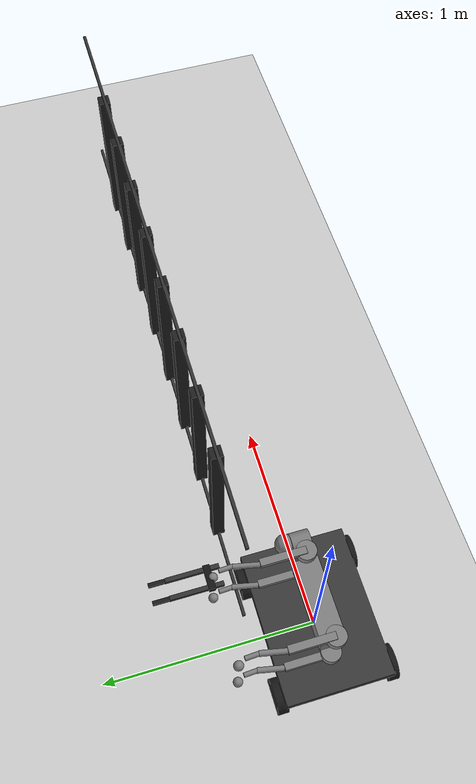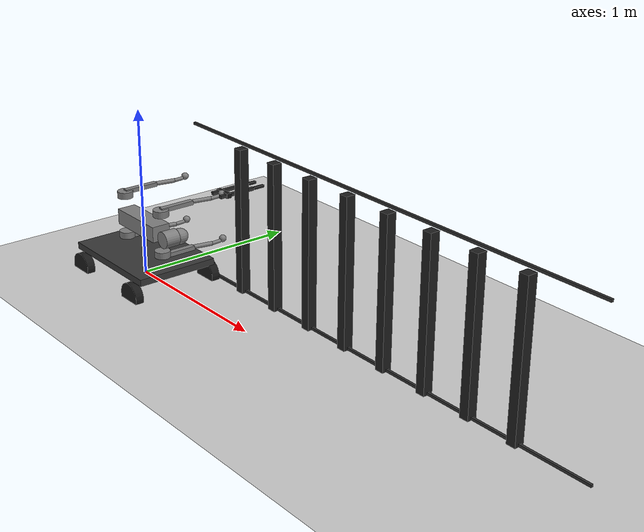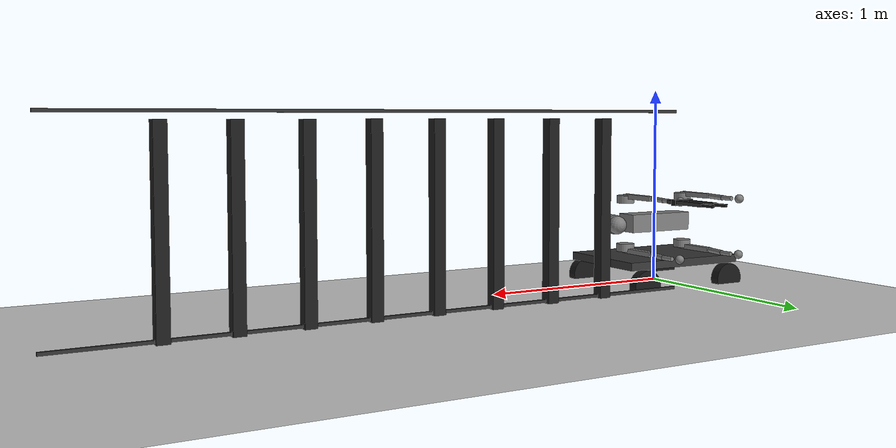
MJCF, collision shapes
<mujoco model="go2_real_ladder_crawl">
  <compiler angle="radian" meshdir="/home/student22/mujoco_menagerie/unitree_go2/assets" autolimits="true"/>
  <option timestep="0.002" gravity="0 0 -0.001"
          solver="Newton" iterations="100" tolerance="1e-10" impratio="10"/>
  <default>
    <default class="go2">
      <geom friction="0.6" margin="0.001" condim="1" />
      <joint axis="0 1 0" damping="2" armature="0.01" frictionloss="0.2" />
      <motor ctrlrange="-23.7 23.7" />
      <default class="abduction">
        <joint axis="1 0 0" range="-1.0472 1.0472" />
      </default>
      <default class="hip">
        <default class="front_hip">
          <joint range="-1.5708 3.4907" />
        </default>
        <default class="back_hip">
          <joint range="-0.5236 4.5379" />
        </default>
      </default>
      <default class="knee">
        <joint range="-2.7227 -0.83776" />
        <motor ctrlrange="-45.43 45.43" />
      </default>
      <default class="visual">
        <geom type="mesh" contype="0" conaffinity="0" group="2" />
      </default>
      <default class="collision">
        <geom group="3" />
        <default class="foot">
          <geom size="0.022" pos="-0.002 0 -0.213" priority="1" solimp="0.015 1 0.022" condim="6" friction="0.8 0.02 0.01" />
        </default>
      </default>
    </default>
  </default>

  <asset>
    <material name="metal" rgba=".9 .95 .95 1" />
    <material name="black" rgba="0 0 0 1" />
    <material name="white" rgba="1 1 1 1" />
    <material name="gray" rgba="0.671705 0.692426 0.774270 1" />

    <mesh file="base_0.obj" />
    <mesh file="base_1.obj" />
    <mesh file="base_2.obj" />
    <mesh file="base_3.obj" />
    <mesh file="base_4.obj" />
    <mesh file="hip_0.obj" />
    <mesh file="hip_1.obj" />
    <mesh file="thigh_0.obj" />
    <mesh file="thigh_1.obj" />
    <mesh file="thigh_mirror_0.obj" />
    <mesh file="thigh_mirror_1.obj" />
    <mesh file="calf_0.obj" />
    <mesh file="calf_1.obj" />
    <mesh file="calf_mirror_0.obj" />
    <mesh file="calf_mirror_1.obj" />
    <mesh file="foot.obj" />
  </asset>

  <worldbody>
    <light pos="0 0 4" dir="0 0 -1" diffuse="0.9 0.9 0.9"/>
    <geom name="floor" type="plane" size="10 10 0.1"
          rgba="0.80 0.80 0.80 1" friction="0.005 0.001 0.001"/>

    <body name="ladder" pos="1.619 0.3 0">
      <geom type="box" size="1.5 0.007 0.007" pos="0 0 0.007"
            rgba="0.20 0.20 0.20 1" contype="0" conaffinity="0"/>
      <geom type="box" size="1.5 0.007 0.007" pos="0 0 0.893"
            rgba="0.20 0.20 0.20 1" contype="0" conaffinity="0"/>
      <geom name="rung_01" type="box" size="0.028 0.028 0.440" pos="-1.05 0 0.42" rgba="0.12 0.12 0.12 1" contype="0" conaffinity="0"/>
      <geom name="rung_02" type="box" size="0.028 0.028 0.440" pos="-0.75 0 0.42" rgba="0.12 0.12 0.12 1" contype="0" conaffinity="0"/>
      <geom name="rung_03" type="box" size="0.028 0.028 0.440" pos="-0.45 0 0.42" rgba="0.12 0.12 0.12 1" contype="0" conaffinity="0"/>
      <geom name="rung_04" type="box" size="0.028 0.028 0.440" pos="-0.15 0 0.42" rgba="0.12 0.12 0.12 1" contype="0" conaffinity="0"/>
      <geom name="rung_05" type="box" size="0.028 0.028 0.440" pos=" 0.15 0 0.42" rgba="0.12 0.12 0.12 1" contype="0" conaffinity="0"/>
      <geom name="rung_06" type="box" size="0.028 0.028 0.440" pos=" 0.45 0 0.42" rgba="0.12 0.12 0.12 1" contype="0" conaffinity="0"/>
      <geom name="rung_07" type="box" size="0.028 0.028 0.440" pos=" 0.75 0 0.42" rgba="0.12 0.12 0.12 1" contype="0" conaffinity="0"/>
      <geom name="rung_08" type="box" size="0.028 0.028 0.440" pos=" 1.05 0 0.42" rgba="0.12 0.12 0.12 1" contype="0" conaffinity="0"/>
    </body>

    <body name="trolley" pos="0 0 0.12">
      <joint name="trolley_slide" type="slide" axis="1 0 0" damping="0.5" limited="false"/>
      <geom type="box" size="0.35 0.25 0.02" rgba="0.22 0.22 0.22 1" mass="5.0"/>
      <body name="wfl" pos=" 0.27  0.26 -0.10"><joint name="wfl_j" type="hinge" axis="0 1 0" damping="0.001" limited="false"/><geom type="cylinder" size="0.08 0.025" euler="1.5708 0 0" mass="0.5" rgba="0.10 0.10 0.10 1" friction="0.001 0.001 0.001"/></body>
      <body name="wfr" pos=" 0.27 -0.26 -0.10"><joint name="wfr_j" type="hinge" axis="0 1 0" damping="0.001" limited="false"/><geom type="cylinder" size="0.08 0.025" euler="1.5708 0 0" mass="0.5" rgba="0.10 0.10 0.10 1" friction="0.001 0.001 0.001"/></body>
      <body name="wrl" pos="-0.27  0.26 -0.10"><joint name="wrl_j" type="hinge" axis="0 1 0" damping="0.001" limited="false"/><geom type="cylinder" size="0.08 0.025" euler="1.5708 0 0" mass="0.5" rgba="0.10 0.10 0.10 1" friction="0.001 0.001 0.001"/></body>
      <body name="wrr" pos="-0.27 -0.26 -0.10"><joint name="wrr_j" type="hinge" axis="0 1 0" damping="0.001" limited="false"/><geom type="cylinder" size="0.08 0.025" euler="1.5708 0 0" mass="0.5" rgba="0.10 0.10 0.10 1" friction="0.001 0.001 0.001"/></body>
      <body name="base" pos="0 0 0.19" childclass="go2" euler="1.5708 0 0">
      <inertial pos="0.021112 0 -0.005366" quat="-0.000543471 0.713435 -0.00173769 0.700719" mass="6.921" diaginertia="0.107027 0.0980771 0.0244531" />
      <geom mesh="base_0" material="black" class="visual" />
      <geom mesh="base_1" material="black" class="visual" />
      <geom mesh="base_2" material="black" class="visual" />
      <geom mesh="base_3" material="white" class="visual" />
      <geom mesh="base_4" material="gray" class="visual" />
      <geom size="0.1881 0.04675 0.057" type="box" class="collision" />
      <geom size="0.05 0.045" pos="0.285 0 0.01" type="cylinder" class="collision" />
      <geom size="0.047" pos="0.293 0 -0.06" class="collision" />
      <site name="imu" pos="-0.02557 0 0.04232" />
      <body name="FL_hip" pos="0.1934 0.0465 0">
        <inertial pos="-0.0054 0.00194 -0.000105" quat="0.497014 0.499245 0.505462 0.498237" mass="0.678" diaginertia="0.00088403 0.000596003 0.000479967" />
        <joint name="FL_hip_joint" class="abduction" />
        <geom mesh="hip_0" material="metal" class="visual" />
        <geom mesh="hip_1" material="gray" class="visual" />
        <geom size="0.046 0.02" pos="0 0.08 0" quat="1 1 0 0" type="cylinder" class="collision" />
        <body name="FL_thigh" pos="0 0.0955 0">
          <inertial pos="-0.00374 -0.0223 -0.0327" quat="0.829533 0.0847635 -0.0200632 0.551623" mass="1.152" diaginertia="0.00594973 0.00584149 0.000878787" />
          <joint name="FL_thigh_joint" class="front_hip" />
          <geom mesh="thigh_0" material="metal" class="visual" />
          <geom mesh="thigh_1" material="gray" class="visual" />
          <geom size="0.1065 0.01225 0.017" pos="0 0 -0.1065" quat="0.707107 0 0.707107 0" type="box" class="collision" />
          <body name="FL_calf" pos="0 0 -0.213">
            <inertial pos="0.00629595 -0.000622121 -0.141417" quat="0.710672 0.00154099 -0.00450087 0.703508" mass="0.241352" diaginertia="0.0014901 0.00146356 5.31397e-05" />
            <joint name="FL_calf_joint" class="knee" />
            <geom mesh="calf_0" material="gray" class="visual" />
            <geom mesh="calf_1" material="black" class="visual" />
            <geom size="0.012 0.06" pos="0.008 0 -0.06" quat="0.994493 0 -0.104807 0" type="cylinder" class="collision" />
            <geom size="0.011 0.0325" pos="0.02 0 -0.148" quat="0.999688 0 0.0249974 0" type="cylinder" class="collision" />
            <geom pos="0 0 -0.213" mesh="foot" class="visual" material="black" />
            <geom name="FL" class="foot" />
          <body name="gc_palm" pos="0 0 -0.213"><site name="gc_grip_site" pos="0 0 0" size="0.006" rgba="1 0 0 1" /><geom type="box" size="0.055 0.015 0.015" pos="0 0 -0.015" rgba="0.08 0.08 0.08 1" mass="0.001" contype="0" conaffinity="0" /><body name="gc_lp" pos="-0.040 0 -0.02"><joint name="gc_lp_joint" type="hinge" axis="0 1 0" range="0 1.2217" damping="2.0" armature="0.001" /><geom type="box" size="0.010 0.009 0.120" pos="0 0 -0.060" rgba="0.2 0.2 0.2 1" mass="0.001" contype="0" conaffinity="0" /><body name="gc_ld" pos="0 0 -0.120"><geom type="box" size="0.009 0.007 0.090" pos="0 0 -0.045" rgba="0.1 0.1 0.1 1" mass="0.001" contype="0" conaffinity="0" /></body></body><body name="gc_rp" pos="0.040 0 -0.02"><joint name="gc_rp_joint" type="hinge" axis="0 -1 0" range="0 1.2217" damping="2.0" armature="0.001" /><geom type="box" size="0.010 0.009 0.120" pos="0 0 -0.060" rgba="0.2 0.2 0.2 1" mass="0.001" contype="0" conaffinity="0" /><body name="gc_rd" pos="0 0 -0.120"><geom type="box" size="0.009 0.007 0.090" pos="0 0 -0.045" rgba="0.1 0.1 0.1 1" mass="0.001" contype="0" conaffinity="0" /></body></body></body></body>
        </body>
      </body>
      <body name="FR_hip" pos="0.1934 -0.0465 0">
        <inertial pos="-0.0054 -0.00194 -0.000105" quat="0.498237 0.505462 0.499245 0.497014" mass="0.678" diaginertia="0.00088403 0.000596003 0.000479967" />
        <joint name="FR_hip_joint" class="abduction" />
        <geom mesh="hip_0" material="metal" class="visual" quat="4.63268e-05 1 0 0" />
        <geom mesh="hip_1" material="gray" class="visual" quat="4.63268e-05 1 0 0" />
        <geom size="0.046 0.02" pos="0 -0.08 0" quat="0.707107 0.707107 0 0" type="cylinder" class="collision" />
        <body name="FR_thigh" pos="0 -0.0955 0">
          <inertial pos="-0.00374 0.0223 -0.0327" quat="0.551623 -0.0200632 0.0847635 0.829533" mass="1.152" diaginertia="0.00594973 0.00584149 0.000878787" />
          <joint name="FR_thigh_joint" class="front_hip" />
          <geom mesh="thigh_mirror_0" material="metal" class="visual" />
          <geom mesh="thigh_mirror_1" material="gray" class="visual" />
          <geom size="0.1065 0.01225 0.017" pos="0 0 -0.1065" quat="0.707107 0 0.707107 0" type="box" class="collision" />
          <body name="FR_calf" pos="0 0 -0.213">
            <inertial pos="0.00629595 0.000622121 -0.141417" quat="0.703508 -0.00450087 0.00154099 0.710672" mass="0.241352" diaginertia="0.0014901 0.00146356 5.31397e-05" />
            <joint name="FR_calf_joint" class="knee" />
            <geom mesh="calf_mirror_0" material="gray" class="visual" />
            <geom mesh="calf_mirror_1" material="black" class="visual" />
            <geom size="0.013 0.06" pos="0.01 0 -0.06" quat="0.995004 0 -0.0998334 0" type="cylinder" class="collision" />
            <geom size="0.011 0.0325" pos="0.02 0 -0.148" quat="0.999688 0 0.0249974 0" type="cylinder" class="collision" />
            <geom pos="0 0 -0.213" mesh="foot" class="visual" material="black" />
            <geom name="FR" class="foot" />
          </body>
        </body>
      </body>
      <body name="RL_hip" pos="-0.1934 0.0465 0">
        <inertial pos="0.0054 0.00194 -0.000105" quat="0.505462 0.498237 0.497014 0.499245" mass="0.678" diaginertia="0.00088403 0.000596003 0.000479967" />
        <joint name="RL_hip_joint" class="abduction" />
        <geom mesh="hip_0" material="metal" class="visual" quat="4.63268e-05 0 1 0" />
        <geom mesh="hip_1" material="gray" class="visual" quat="4.63268e-05 0 1 0" />
        <geom size="0.046 0.02" pos="0 0.08 0" quat="0.707107 0.707107 0 0" type="cylinder" class="collision" />
        <body name="RL_thigh" pos="0 0.0955 0">
          <inertial pos="-0.00374 -0.0223 -0.0327" quat="0.829533 0.0847635 -0.0200632 0.551623" mass="1.152" diaginertia="0.00594973 0.00584149 0.000878787" />
          <joint name="RL_thigh_joint" class="back_hip" />
          <geom mesh="thigh_0" material="metal" class="visual" />
          <geom mesh="thigh_1" material="gray" class="visual" />
          <geom size="0.1065 0.01225 0.017" pos="0 0 -0.1065" quat="0.707107 0 0.707107 0" type="box" class="collision" />
          <body name="RL_calf" pos="0 0 -0.213">
            <inertial pos="0.00629595 -0.000622121 -0.141417" quat="0.710672 0.00154099 -0.00450087 0.703508" mass="0.241352" diaginertia="0.0014901 0.00146356 5.31397e-05" />
            <joint name="RL_calf_joint" class="knee" />
            <geom mesh="calf_0" material="gray" class="visual" />
            <geom mesh="calf_1" material="black" class="visual" />
            <geom size="0.013 0.06" pos="0.01 0 -0.06" quat="0.995004 0 -0.0998334 0" type="cylinder" class="collision" />
            <geom size="0.011 0.0325" pos="0.02 0 -0.148" quat="0.999688 0 0.0249974 0" type="cylinder" class="collision" />
            <geom pos="0 0 -0.213" mesh="foot" class="visual" material="black" />
            <geom name="RL" class="foot" />
          </body>
        </body>
      </body>
      <body name="RR_hip" pos="-0.1934 -0.0465 0">
        <inertial pos="0.0054 -0.00194 -0.000105" quat="0.499245 0.497014 0.498237 0.505462" mass="0.678" diaginertia="0.00088403 0.000596003 0.000479967" />
        <joint name="RR_hip_joint" class="abduction" />
        <geom mesh="hip_0" material="metal" class="visual" quat="2.14617e-09 4.63268e-05 4.63268e-05 -1" />
        <geom mesh="hip_1" material="gray" class="visual" quat="2.14617e-09 4.63268e-05 4.63268e-05 -1" />
        <geom size="0.046 0.02" pos="0 -0.08 0" quat="0.707107 0.707107 0 0" type="cylinder" class="collision" />
        <body name="RR_thigh" pos="0 -0.0955 0">
          <inertial pos="-0.00374 0.0223 -0.0327" quat="0.551623 -0.0200632 0.0847635 0.829533" mass="1.152" diaginertia="0.00594973 0.00584149 0.000878787" />
          <joint name="RR_thigh_joint" class="back_hip" />
          <geom mesh="thigh_mirror_0" material="metal" class="visual" />
          <geom mesh="thigh_mirror_1" material="gray" class="visual" />
          <geom size="0.1065 0.01225 0.017" pos="0 0 -0.1065" quat="0.707107 0 0.707107 0" type="box" class="collision" />
          <body name="RR_calf" pos="0 0 -0.213">
            <inertial pos="0.00629595 0.000622121 -0.141417" quat="0.703508 -0.00450087 0.00154099 0.710672" mass="0.241352" diaginertia="0.0014901 0.00146356 5.31397e-05" />
            <joint name="RR_calf_joint" class="knee" />
            <geom mesh="calf_mirror_0" material="gray" class="visual" />
            <geom mesh="calf_mirror_1" material="black" class="visual" />
            <geom size="0.013 0.06" pos="0.01 0 -0.06" quat="0.995004 0 -0.0998334 0" type="cylinder" class="collision" />
            <geom size="0.011 0.0325" pos="0.02 0 -0.148" quat="0.999688 0 0.0249974 0" type="cylinder" class="collision" />
            <geom pos="0 0 -0.213" mesh="foot" class="visual" material="black" />
            <geom name="RR" class="foot" />
          </body>
        </body>
      </body>
    </body>

    </body>
  </worldbody>

  <actuator>
    <motor class="abduction" name="FL_hip" joint="FL_hip_joint" />
    <motor class="hip" name="FL_thigh" joint="FL_thigh_joint" />
    <motor class="knee" name="FL_calf" joint="FL_calf_joint" />
    <motor class="abduction" name="FR_hip" joint="FR_hip_joint" />
    <motor class="hip" name="FR_thigh" joint="FR_thigh_joint" />
    <motor class="knee" name="FR_calf" joint="FR_calf_joint" />
    <motor class="abduction" name="RL_hip" joint="RL_hip_joint" />
    <motor class="hip" name="RL_thigh" joint="RL_thigh_joint" />
    <motor class="knee" name="RL_calf" joint="RL_calf_joint" />
    <motor class="abduction" name="RR_hip" joint="RR_hip_joint" />
    <motor class="hip" name="RR_thigh" joint="RR_thigh_joint" />
    <motor class="knee" name="RR_calf" joint="RR_calf_joint" />
    <position name="gc_lp" joint="gc_lp_joint" kp="30" kv="3" ctrlrange="0 1.2217"/>
  <position name="gc_rp" joint="gc_rp_joint" kp="30" kv="3" ctrlrange="0 1.2217"/>
</actuator>

  <equality>
    <connect name="fl_grip" body1="gc_palm" body2="ladder"
             anchor="0 0 0" active="false" solref="0.01 1" solimp="0.9 0.95 0.001"/>
  </equality>

  <sensor>
    <jointpos name="trolley_x"   joint="trolley_slide"/>
    <framepos name="fl_calf_pos" objtype="body" objname="FL_calf"/>
    <framepos name="gc_palm_pos" objtype="site" objname="gc_grip_site"/>
  </sensor>
</mujoco>
